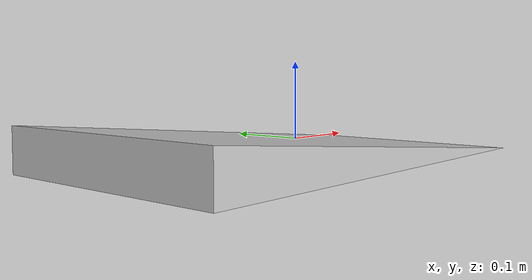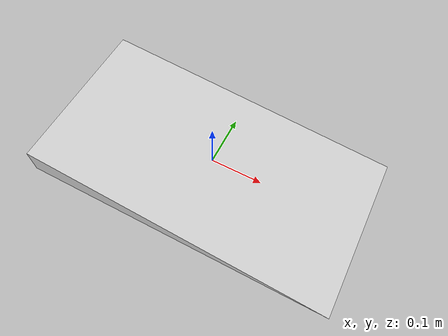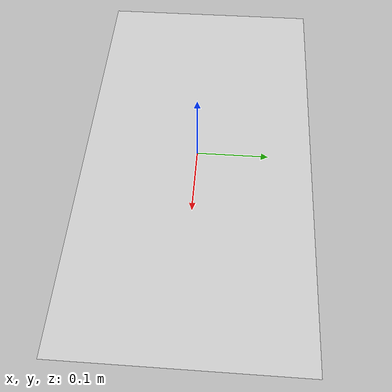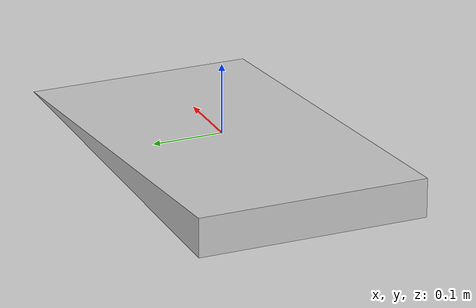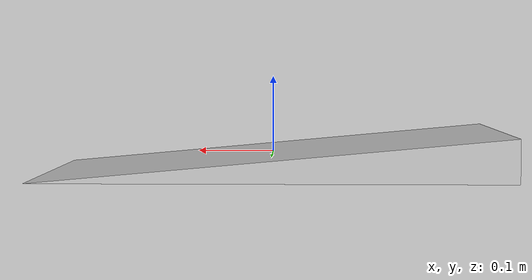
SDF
<?xml version="1.0" ?>
<sdf version="1.5">
  <model name="rampa_baixa">
    <link name="link">
      <collision name="collision">
        <geometry>
          <mesh>
            <scale>0.16 0.16 0.16</scale>
            <uri>model://rampa_baixa/meshes/rampa_baixa.stl</uri>
          </mesh>
        </geometry>
      </collision>
      <visual name="visual">
        <geometry>
          <mesh>
            <scale>0.16 0.16 0.16</scale>
            <uri>model://rampa_baixa/meshes/rampa_baixa.dae</uri>
          </mesh>
        </geometry>
      </visual>
    </link>
  </model>
</sdf>
